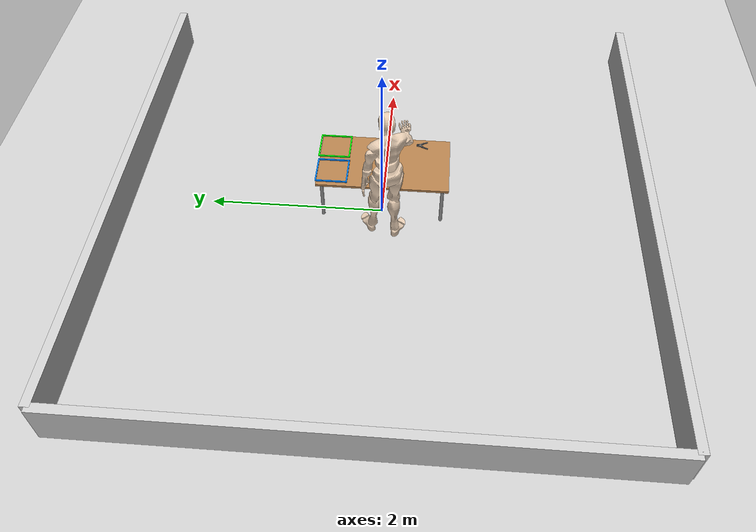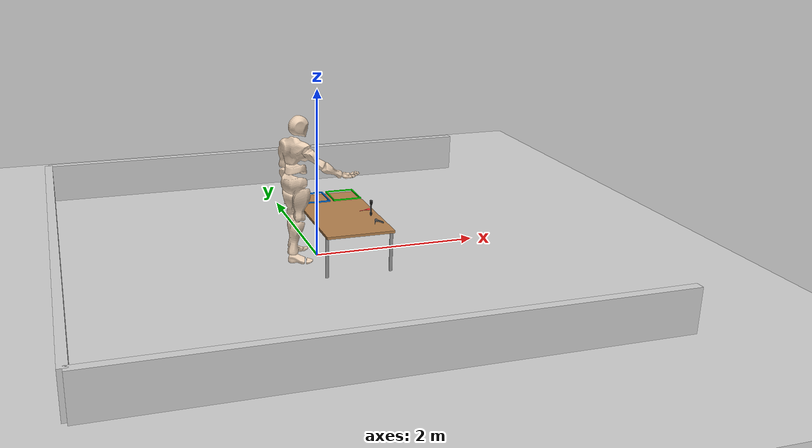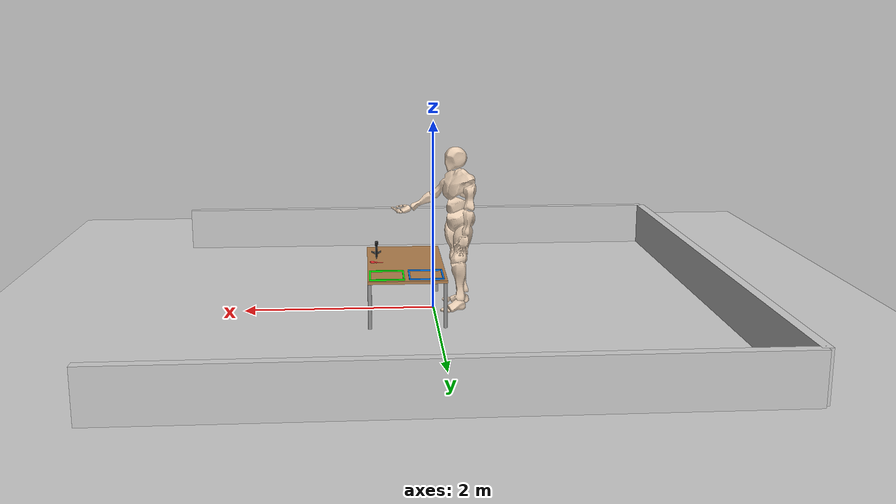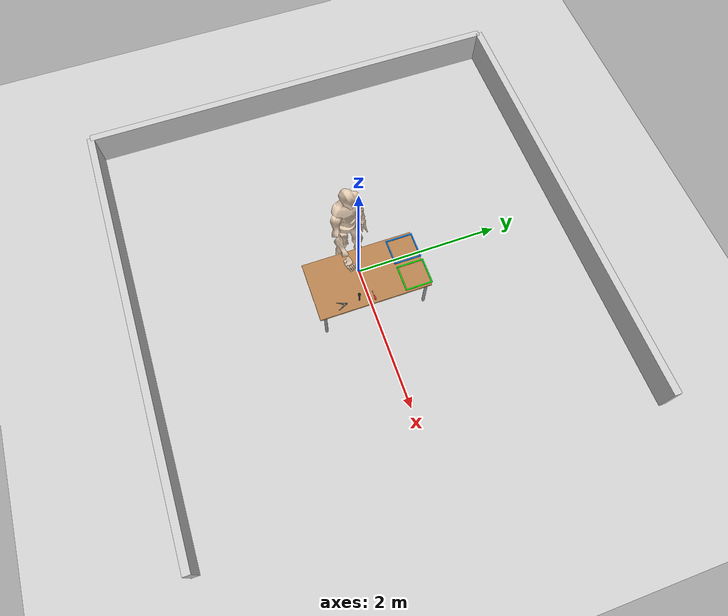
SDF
<sdf version="1.7">
 <world name="default">
  <light name="sun" type="directional">
   <pose>0 0 10 0 -0 0</pose>
   <diffuse>0.8 0.8 0.8 1</diffuse>
   <specular>0.2 0.2 0.2 1</specular>
   <attenuation>
    <range>1000</range>
    <constant>0.9</constant>
    <linear>0.01</linear>
    <quadratic>0.001</quadratic>
   </attenuation>
   <direction>-0.5 0.1 -0.9</direction>
   <spot><inner_angle>0</inner_angle><outer_angle>0</outer_angle><falloff>0</falloff></spot>
  </light>
  <model name="ground_plane">
   <static>1</static>
   <link name="link">
    <collision name="collision">
     <geometry><plane><normal>0 0 1</normal><size>100 100</size></plane></geometry>
     <surface>
      <contact><collide_bitmask>65535</collide_bitmask></contact>
      <friction><ode><mu>100</mu><mu2>50</mu2></ode></friction>
     </surface>
    </collision>
    <visual name="visual">
     <cast_shadows>0</cast_shadows>
     <geometry><plane><normal>0 0 1</normal><size>100 100</size></plane></geometry>
     <material>
      <script><uri>file://media/materials/scripts/gazebo.material</uri><name>Gazebo/Grey</name></script>
     </material>
    </visual>
   </link>
  </model>
  <model name="table">
   <static>1</static>
   <link name="link">
    <collision name="surface">
     <pose>0 0 0.5 0 -0 0</pose>
     <geometry><box><size>1.5 0.8 0.03</size></box></geometry>
    </collision>
    <visual name="visual1">
     <pose>0 0 0.5 0 -0 0</pose>
     <geometry><box><size>1.5 0.8 0.03</size></box></geometry>
     <material>
      <script><uri>file://media/materials/scripts/gazebo.material</uri><name>Gazebo/Wood</name></script>
     </material>
    </visual>
    <collision name="front_left_leg">
     <pose>0.68 0.38 0.25 0 -0 0</pose>
     <geometry><cylinder><radius>0.02</radius><length>0.5</length></cylinder></geometry>
    </collision>
    <visual name="front_left_leg">
     <pose>0.68 0.38 0.25 0 -0 0</pose>
     <geometry><cylinder><radius>0.02</radius><length>0.5</length></cylinder></geometry>
     <material>
      <script><uri>file://media/materials/scripts/gazebo.material</uri><name>Gazebo/Grey</name></script>
     </material>
    </visual>
    <collision name="front_right_leg">
     <pose>0.68 -0.38 0.25 0 -0 0</pose>
     <geometry><cylinder><radius>0.02</radius><length>0.5</length></cylinder></geometry>
    </collision>
    <visual name="front_right_leg">
     <pose>0.68 -0.38 0.25 0 -0 0</pose>
     <geometry><cylinder><radius>0.02</radius><length>0.5</length></cylinder></geometry>
     <material>
      <script><uri>file://media/materials/scripts/gazebo.material</uri><name>Gazebo/Grey</name></script>
     </material>
    </visual>
    <collision name="back_right_leg">
     <pose>-0.68 -0.38 0.25 0 -0 0</pose>
     <geometry><cylinder><radius>0.02</radius><length>0.5</length></cylinder></geometry>
    </collision>
    <visual name="back_right_leg">
     <pose>-0.68 -0.38 0.25 0 -0 0</pose>
     <geometry><cylinder><radius>0.02</radius><length>0.5</length></cylinder></geometry>
     <material>
      <script><uri>file://media/materials/scripts/gazebo.material</uri><name>Gazebo/Grey</name></script>
     </material>
    </visual>
    <collision name="back_left_leg">
     <pose>-0.68 0.38 0.25 0 -0 0</pose>
     <geometry><cylinder><radius>0.02</radius><length>0.5</length></cylinder></geometry>
    </collision>
    <visual name="back_left_leg">
     <pose>-0.68 0.38 0.25 0 -0 0</pose>
     <geometry><cylinder><radius>0.02</radius><length>0.5</length></cylinder></geometry>
     <material>
      <script><uri>file://media/materials/scripts/gazebo.material</uri><name>Gazebo/Grey</name></script>
     </material>
    </visual>
   </link>
   <pose>0.3 0 -0.015 0 -0 1.57</pose>
  </model>
  <model name="screwdriver">
   <static>0</static>
   <link name="link">
    <inertial>
     <mass>0.05</mass>
     <inertia>
      <ixx>5.2083e-05</ixx>
      <ixy>0</ixy>
      <ixz>0</ixz>
      <iyy>5.2083e-05</iyy>
      <iyz>0</iyz>
      <izz>2.0833e-05</izz>
     </inertia>
    </inertial>
    <collision name="collision">
     <geometry>
      <mesh>
       <uri>model://challenge_screwdriver/mesh/challenge_screwdriver.stl</uri>
       <scale>0.001 0.001 0.001</scale>
      </mesh>
     </geometry>
     <surface><friction><ode><mu>30</mu><mu2>30</mu2></ode></friction></surface>
    </collision>
    <visual name="visual">
     <geometry>
      <mesh>
       <uri>model://challenge_screwdriver/mesh/challenge_screwdriver.stl</uri>
       <scale>0.001 0.001 0.001</scale>
      </mesh>
     </geometry>
     <material><ambient>0.8 0.1 0.1 1</ambient><diffuse>1 0.2 0.2 1</diffuse></material>
    </visual>
   </link>
   <pose>0.599156 -0.003635 0.508029 0.000878 -0.075299 0.034754</pose>
  </model>
  <model name="torch">
   <static>0</static>
   <link name="link">
    <inertial>
     <mass>0.2</mass>
     <inertia><ixx>0.0003</ixx><ixy>0</ixy><ixz>0</ixz><iyy>0.0003</iyy><iyz>0</iyz><izz>4e-05</izz></inertia>
    </inertial>
    <collision name="collision">
     <geometry>
      <mesh><uri>model://challenge_torch/mesh/challenge_torch.stl</uri><scale>0.001 0.001 0.001</scale></mesh>
     </geometry>
    </collision>
    <visual name="visual">
     <geometry>
      <mesh><uri>model://challenge_torch/mesh/challenge_torch.stl</uri><scale>0.001 0.001 0.001</scale></mesh>
     </geometry>
     <material><ambient>0.05 0.05 0.05 1</ambient><diffuse>0.1 0.1 0.1 1</diffuse></material>
    </visual>
   </link>
   <pose>0.600002 -0.199999 0.500001 -6.1e-05 -0.00012 -0.002257</pose>
  </model>
  <model name="pincers">
   <static>0</static>
   <link name="link">
    <inertial>
     <mass>0.25</mass>
     <inertia><ixx>0.0005</ixx><ixy>0</ixy><ixz>0</ixz><iyy>0.0007</iyy><iyz>0</iyz><izz>0.00015</izz></inertia>
    </inertial>
    <collision name="collision">
     <geometry>
      <mesh><uri>model://challenge_pincers/mesh/challenge_pincers.stl</uri><scale>0.001 0.001 0.001</scale></mesh>
     </geometry>
    </collision>
    <visual name="visual">
     <geometry>
      <mesh><uri>model://challenge_pincers/mesh/challenge_pincers.stl</uri><scale>0.001 0.001 0.001</scale></mesh>
     </geometry>
     <material><ambient>0.2 0.2 0.2 1</ambient><diffuse>0.4 0.4 0.4 1</diffuse></material>
    </visual>
   </link>
   <pose>0.599982 -0.399994 0.5 0.000313 -0.000304 -0.001075</pose>
  </model>
  <model name="human">
   <static>1</static>
   <link name="link">
    <inertial>
     <mass>70</mass>
     <inertia><ixx>1</ixx><ixy>0</ixy><ixz>0</ixz><iyy>1</iyy><iyz>0</iyz><izz>1</izz></inertia>
    </inertial>
    <collision name="collision">
     <geometry><mesh><uri>model://challenge_human/mesh/human_model.stl</uri><scale>1 1 1</scale></mesh></geometry>
    </collision>
    <visual name="visual">
     <geometry><mesh><uri>model://challenge_human/mesh/human_model.stl</uri><scale>1 1 1</scale></mesh></geometry>
     <material><ambient>0.8 0.7 0.6 1</ambient><diffuse>0.9 0.8 0.7 1</diffuse></material>
    </visual>
   </link>
   <pose>-0.177756 0.15984 0 0 -0 1.7365</pose>
  </model>
  <model name="north_wall">
   <static>1</static>
   <link name="link">
    <collision name="collision"><geometry><box><size>6 0.1 0.5</size></box></geometry></collision>
    <visual name="visual">
     <geometry><box><size>6 0.1 0.5</size></box></geometry>
     <material><ambient>0.8 0.8 0.8 1</ambient><diffuse>0.8 0.8 0.8 1</diffuse></material>
    </visual>
   </link>
   <pose>0 3 0.25 0 -0 0</pose>
  </model>
  <model name="south_wall">
   <static>1</static>
   <link name="link">
    <collision name="collision"><geometry><box><size>6 0.1 0.5</size></box></geometry></collision>
    <visual name="visual">
     <geometry><box><size>6 0.1 0.5</size></box></geometry>
     <material><ambient>0.8 0.8 0.8 1</ambient><diffuse>0.8 0.8 0.8 1</diffuse></material>
    </visual>
   </link>
   <pose>0 -3 0.25 0 -0 0</pose>
  </model>
  <model name="west_wall">
   <static>1</static>
   <link name="link">
    <collision name="collision"><geometry><box><size>0.1 6 0.5</size></box></geometry></collision>
    <visual name="visual">
     <geometry><box><size>0.1 6 0.5</size></box></geometry>
     <material><ambient>0.8 0.8 0.8 1</ambient><diffuse>0.8 0.8 0.8 1</diffuse></material>
    </visual>
   </link>
   <pose>-3 0 0.25 0 -0 0</pose>
  </model>
  <model name="green_frame">
   <static>1</static>
   <pose>0.506053 0.584464 0.52 0 -0 0</pose>
   <link name="top">
    <pose>0 0.175 0 0 -0 0</pose>
    <collision name="collision"><geometry><box><size>0.35 0.015 0.015</size></box></geometry></collision>
    <visual name="visual">
     <geometry><box><size>0.35 0.015 0.015</size></box></geometry>
     <material><ambient>0 0.8 0 1</ambient><diffuse>0 1 0 1</diffuse><specular>0.3 0.3 0.3 1</specular></material>
    </visual>
   </link>
   <link name="bottom">
    <pose>0 -0.175 0 0 -0 0</pose>
    <collision name="collision"><geometry><box><size>0.35 0.015 0.015</size></box></geometry></collision>
    <visual name="visual">
     <geometry><box><size>0.35 0.015 0.015</size></box></geometry>
     <material><ambient>0 0.8 0 1</ambient><diffuse>0 1 0 1</diffuse><specular>0.3 0.3 0.3 1</specular></material>
    </visual>
   </link>
   <link name="left">
    <pose>-0.1675 0 0 0 -0 0</pose>
    <collision name="collision"><geometry><box><size>0.015 0.35 0.015</size></box></geometry></collision>
    <visual name="visual">
     <geometry><box><size>0.015 0.35 0.015</size></box></geometry>
     <material><ambient>0 0.8 0 1</ambient><diffuse>0 1 0 1</diffuse><specular>0.3 0.3 0.3 1</specular></material>
    </visual>
   </link>
   <link name="right">
    <pose>0.1675 0 0 0 -0 0</pose>
    <collision name="collision"><geometry><box><size>0.015 0.35 0.015</size></box></geometry></collision>
    <visual name="visual">
     <geometry><box><size>0.015 0.35 0.015</size></box></geometry>
     <material><ambient>0 0.8 0 1</ambient><diffuse>0 1 0 1</diffuse><specular>0.3 0.3 0.3 1</specular></material>
    </visual>
   </link>
  </model>
  <model name="blue_frame">
   <static>1</static>
   <pose>0.111193 0.577427 0.52 0 -0 0</pose>
   <link name="top">
    <pose>0 0.175 0 0 -0 0</pose>
    <collision name="collision"><geometry><box><size>0.35 0.015 0.015</size></box></geometry></collision>
    <visual name="visual">
     <geometry><box><size>0.35 0.015 0.015</size></box></geometry>
     <material>
      <ambient>0 0 0.8 1</ambient>
      <diffuse>0 0.5 1 1</diffuse>
      <specular>0.3 0.3 0.3 1</specular>
     </material>
    </visual>
   </link>
   <link name="bottom">
    <pose>0 -0.175 0 0 -0 0</pose>
    <collision name="collision"><geometry><box><size>0.35 0.015 0.015</size></box></geometry></collision>
    <visual name="visual">
     <geometry><box><size>0.35 0.015 0.015</size></box></geometry>
     <material>
      <ambient>0 0 0.8 1</ambient>
      <diffuse>0 0.5 1 1</diffuse>
      <specular>0.3 0.3 0.3 1</specular>
     </material>
    </visual>
   </link>
   <link name="left">
    <pose>-0.1675 0 0 0 -0 0</pose>
    <collision name="collision"><geometry><box><size>0.015 0.35 0.015</size></box></geometry></collision>
    <visual name="visual">
     <geometry><box><size>0.015 0.35 0.015</size></box></geometry>
     <material>
      <ambient>0 0 0.8 1</ambient>
      <diffuse>0 0.5 1 1</diffuse>
      <specular>0.3 0.3 0.3 1</specular>
     </material>
    </visual>
   </link>
   <link name="right">
    <pose>0.1675 0 0 0 -0 0</pose>
    <collision name="collision"><geometry><box><size>0.015 0.35 0.015</size></box></geometry></collision>
    <visual name="visual">
     <geometry><box><size>0.015 0.35 0.015</size></box></geometry>
     <material>
      <ambient>0 0 0.8 1</ambient>
      <diffuse>0 0.5 1 1</diffuse>
      <specular>0.3 0.3 0.3 1</specular>
     </material>
    </visual>
   </link>
  </model>
  <gravity>0 0 -9.8</gravity>
  <physics type="ode">
   <max_step_size>0.001</max_step_size>
   <real_time_factor>1</real_time_factor>
   <real_time_update_rate>1000</real_time_update_rate>
  </physics>
  <magnetic_field>6e-06 2.3e-05 -4.2e-05</magnetic_field>
  <atmosphere type="adiabatic"/>
  <scene><ambient>0.4 0.4 0.4 1</ambient><background>0.7 0.7 0.7 1</background><shadows>1</shadows></scene>
  <spherical_coordinates>
   <surface_model>EARTH_WGS84</surface_model>
   <latitude_deg>0</latitude_deg>
   <longitude_deg>0</longitude_deg>
   <elevation>0</elevation>
   <heading_deg>0</heading_deg>
  </spherical_coordinates>
 </world>
</sdf>
